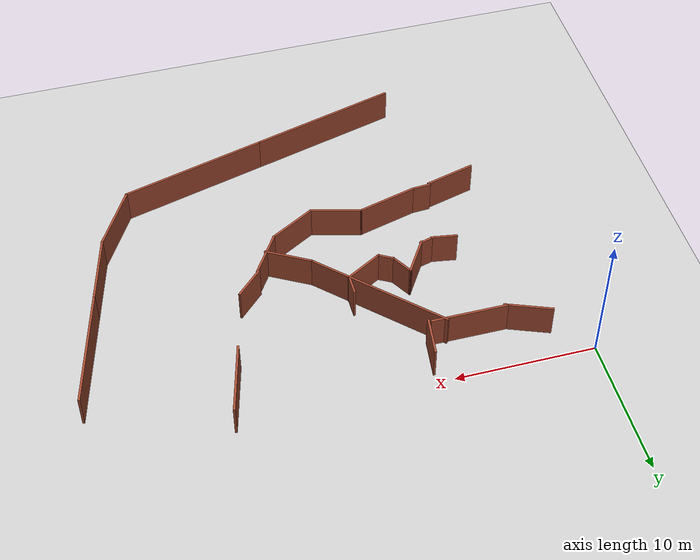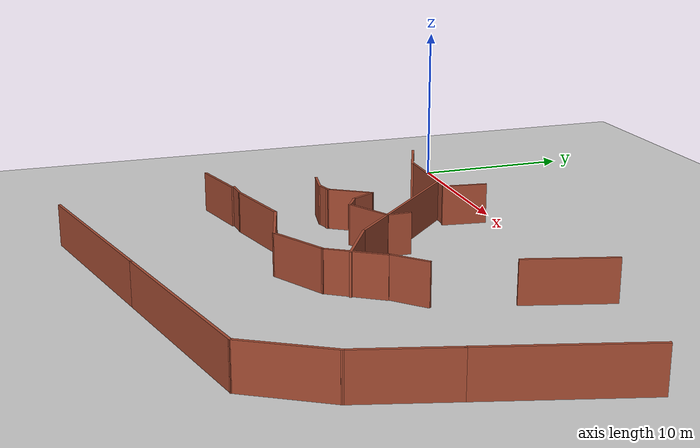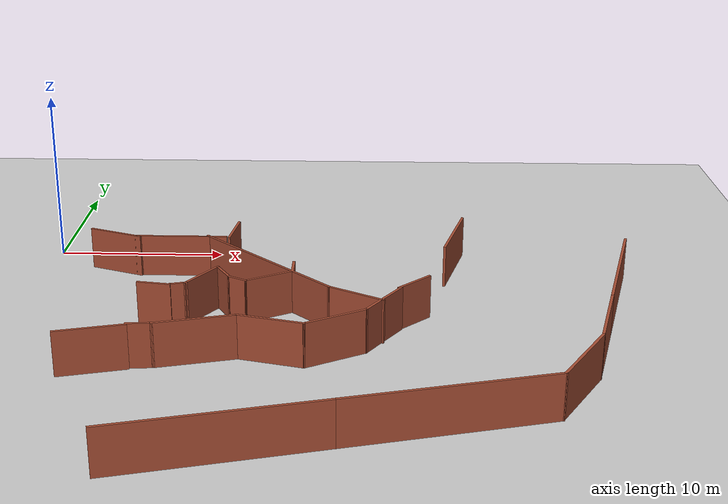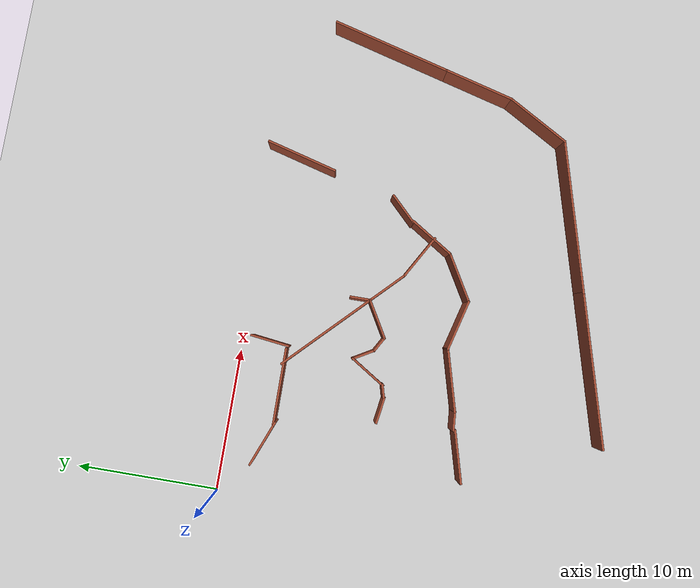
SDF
<sdf version="1.5">
 <world name="default">
  <model name="ground_plane">
   <static>1</static>
   <link name="link">
    <collision name="collision">
     <geometry><plane><normal>0 0 1</normal><size>100 100</size></plane></geometry>
     <surface><friction><ode><mu>100</mu><mu2>50</mu2></ode></friction></surface>
    </collision>
    <visual name="visual">
     <cast_shadows>0</cast_shadows>
     <geometry><plane><normal>0 0 1</normal><size>100 100</size></plane></geometry>
     <material>
      <script><uri>file://media/materials/scripts/gazebo.material</uri><name>Gazebo/Grey</name></script>
     </material>
    </visual>
   </link>
  </model>
  <model name="Untitled1111">
   <link name="Wall_125">
    <pose>2.93183 -16.8951 0 0 -0 0.261799</pose>
    <visual name="Wall_125_Visual">
     <pose>0 0 1.25 0 -0 0</pose>
     <geometry><box><size>3.75 0.15 2.5</size></box></geometry>
     <material>
      <script><uri>file://media/materials/scripts/gazebo.material</uri><name>Gazebo/Bricks</name></script>
      <ambient>1 1 1 1</ambient>
      <shader type="pixel"/>
     </material>
     <meta><layer>0</layer></meta>
    </visual>
    <collision name="Wall_125_Collision">
     <pose>0 0 1.25 0 -0 0</pose>
     <geometry><box><size>3.75 0.15 2.5</size></box></geometry>
     <surface>
      <friction>
       <ode><mu>1</mu><mu2>1</mu2><fdir1>0 0 0</fdir1><slip1>0</slip1><slip2>0</slip2></ode>
       <torsional>
        <coefficient>1</coefficient>
        <patch_radius>0</patch_radius>
        <surface_radius>0</surface_radius>
        <use_patch_radius>1</use_patch_radius>
        <ode><slip>0</slip></ode>
       </torsional>
      </friction>
      <bounce><restitution_coefficient>0</restitution_coefficient><threshold>1e+06</threshold></bounce>
      <contact>
       <collide_without_contact>0</collide_without_contact>
       <collide_without_contact_bitmask>1</collide_without_contact_bitmask>
       <collide_bitmask>1</collide_bitmask>
       <ode>
        <soft_cfm>0</soft_cfm>
        <soft_erp>0.2</soft_erp>
        <kp>1e+13</kp>
        <kd>1</kd>
        <max_vel>0.01</max_vel>
        <min_depth>0</min_depth>
       </ode>
       <bullet>
        <split_impulse>1</split_impulse>
        <split_impulse_penetration_threshold>-0.01</split_impulse_penetration_threshold>
        <soft_cfm>0</soft_cfm>
        <soft_erp>0.2</soft_erp>
        <kp>1e+13</kp>
        <kd>1</kd>
       </bullet>
      </contact>
     </surface>
    </collision>
   </link>
   <link name="Wall_126">
    <pose>5.30143 -16.2622 0 0 -0 0.070665</pose>
    <visual name="Wall_126_Visual">
     <pose>0 0 1.25 0 -0 0</pose>
     <geometry><box><size>1.41503 0.15 2.5</size></box></geometry>
     <material>
      <script><uri>file://media/materials/scripts/gazebo.material</uri><name>Gazebo/Bricks</name></script>
      <ambient>1 1 1 1</ambient>
      <shader type="pixel"/>
     </material>
     <meta><layer>0</layer></meta>
    </visual>
    <collision name="Wall_126_Collision">
     <pose>0 0 1.25 0 -0 0</pose>
     <geometry><box><size>1.41503 0.15 2.5</size></box></geometry>
     <surface>
      <friction>
       <ode><mu>1</mu><mu2>1</mu2><fdir1>0 0 0</fdir1><slip1>0</slip1><slip2>0</slip2></ode>
       <torsional>
        <coefficient>1</coefficient>
        <patch_radius>0</patch_radius>
        <surface_radius>0</surface_radius>
        <use_patch_radius>1</use_patch_radius>
        <ode><slip>0</slip></ode>
       </torsional>
      </friction>
      <bounce><restitution_coefficient>0</restitution_coefficient><threshold>1e+06</threshold></bounce>
      <contact>
       <collide_without_contact>0</collide_without_contact>
       <collide_without_contact_bitmask>1</collide_without_contact_bitmask>
       <collide_bitmask>1</collide_bitmask>
       <ode>
        <soft_cfm>0</soft_cfm>
        <soft_erp>0.2</soft_erp>
        <kp>1e+13</kp>
        <kd>1</kd>
        <max_vel>0.01</max_vel>
        <min_depth>0</min_depth>
       </ode>
       <bullet>
        <split_impulse>1</split_impulse>
        <split_impulse_penetration_threshold>-0.01</split_impulse_penetration_threshold>
        <soft_cfm>0</soft_cfm>
        <soft_erp>0.2</soft_erp>
        <kp>1e+13</kp>
        <kd>1</kd>
       </bullet>
      </contact>
     </surface>
    </collision>
   </link>
   <link name="Wall_127">
    <pose>8.03326 -15.6546 0 0 -0 0.261799</pose>
    <visual name="Wall_127_Visual">
     <pose>0 0 1.25 0 -0 0</pose>
     <geometry><box><size>4.5 0.15 2.5</size></box></geometry>
     <material>
      <script><uri>file://media/materials/scripts/gazebo.material</uri><name>Gazebo/Bricks</name></script>
      <ambient>1 1 1 1</ambient>
      <shader type="pixel"/>
     </material>
     <meta><layer>0</layer></meta>
    </visual>
    <collision name="Wall_127_Collision">
     <pose>0 0 1.25 0 -0 0</pose>
     <geometry><box><size>4.5 0.15 2.5</size></box></geometry>
     <surface>
      <friction>
       <ode><mu>1</mu><mu2>1</mu2><fdir1>0 0 0</fdir1><slip1>0</slip1><slip2>0</slip2></ode>
       <torsional>
        <coefficient>1</coefficient>
        <patch_radius>0</patch_radius>
        <surface_radius>0</surface_radius>
        <use_patch_radius>1</use_patch_radius>
        <ode><slip>0</slip></ode>
       </torsional>
      </friction>
      <bounce><restitution_coefficient>0</restitution_coefficient><threshold>1e+06</threshold></bounce>
      <contact>
       <collide_without_contact>0</collide_without_contact>
       <collide_without_contact_bitmask>1</collide_without_contact_bitmask>
       <collide_bitmask>1</collide_bitmask>
       <ode>
        <soft_cfm>0</soft_cfm>
        <soft_erp>0.2</soft_erp>
        <kp>1e+13</kp>
        <kd>1</kd>
        <max_vel>0.01</max_vel>
        <min_depth>0</min_depth>
       </ode>
       <bullet>
        <split_impulse>1</split_impulse>
        <split_impulse_penetration_threshold>-0.01</split_impulse_penetration_threshold>
        <soft_cfm>0</soft_cfm>
        <soft_erp>0.2</soft_erp>
        <kp>1e+13</kp>
        <kd>1</kd>
       </bullet>
      </contact>
     </surface>
    </collision>
   </link>
   <link name="Wall_128">
    <pose>11.8728 -15.5576 0 0 0 -0.261799</pose>
    <visual name="Wall_128_Visual">
     <pose>0 0 1.25 0 -0 0</pose>
     <geometry><box><size>3.75 0.15 2.5</size></box></geometry>
     <material>
      <script><uri>file://media/materials/scripts/gazebo.material</uri><name>Gazebo/Bricks</name></script>
      <ambient>1 1 1 1</ambient>
      <shader type="pixel"/>
     </material>
     <meta><layer>0</layer></meta>
    </visual>
    <collision name="Wall_128_Collision">
     <pose>0 0 1.25 0 -0 0</pose>
     <geometry><box><size>3.75 0.15 2.5</size></box></geometry>
     <surface>
      <friction>
       <ode><mu>1</mu><mu2>1</mu2><fdir1>0 0 0</fdir1><slip1>0</slip1><slip2>0</slip2></ode>
       <torsional>
        <coefficient>1</coefficient>
        <patch_radius>0</patch_radius>
        <surface_radius>0</surface_radius>
        <use_patch_radius>1</use_patch_radius>
        <ode><slip>0</slip></ode>
       </torsional>
      </friction>
      <bounce><restitution_coefficient>0</restitution_coefficient><threshold>1e+06</threshold></bounce>
      <contact>
       <collide_without_contact>0</collide_without_contact>
       <collide_without_contact_bitmask>1</collide_without_contact_bitmask>
       <collide_bitmask>1</collide_bitmask>
       <ode>
        <soft_cfm>0</soft_cfm>
        <soft_erp>0.2</soft_erp>
        <kp>1e+13</kp>
        <kd>1</kd>
        <max_vel>0.01</max_vel>
        <min_depth>0</min_depth>
       </ode>
       <bullet>
        <split_impulse>1</split_impulse>
        <split_impulse_penetration_threshold>-0.01</split_impulse_penetration_threshold>
        <soft_cfm>0</soft_cfm>
        <soft_erp>0.2</soft_erp>
        <kp>1e+13</kp>
        <kd>1</kd>
       </bullet>
      </contact>
     </surface>
    </collision>
   </link>
   <link name="Wall_129">
    <pose>15.1703 -15.1234 0 0 -0 0.523599</pose>
    <visual name="Wall_129_Visual">
     <pose>0 0 1.25 0 -0 0</pose>
     <geometry><box><size>3.75 0.15 2.5</size></box></geometry>
     <material>
      <script><uri>file://media/materials/scripts/gazebo.material</uri><name>Gazebo/Bricks</name></script>
      <ambient>1 1 1 1</ambient>
      <shader type="pixel"/>
     </material>
     <meta><layer>0</layer></meta>
    </visual>
    <collision name="Wall_129_Collision">
     <pose>0 0 1.25 0 -0 0</pose>
     <geometry><box><size>3.75 0.15 2.5</size></box></geometry>
     <surface>
      <friction>
       <ode><mu>1</mu><mu2>1</mu2><fdir1>0 0 0</fdir1><slip1>0</slip1><slip2>0</slip2></ode>
       <torsional>
        <coefficient>1</coefficient>
        <patch_radius>0</patch_radius>
        <surface_radius>0</surface_radius>
        <use_patch_radius>1</use_patch_radius>
        <ode><slip>0</slip></ode>
       </torsional>
      </friction>
      <bounce><restitution_coefficient>0</restitution_coefficient><threshold>1e+06</threshold></bounce>
      <contact>
       <collide_without_contact>0</collide_without_contact>
       <collide_without_contact_bitmask>1</collide_without_contact_bitmask>
       <collide_bitmask>1</collide_bitmask>
       <ode>
        <soft_cfm>0</soft_cfm>
        <soft_erp>0.2</soft_erp>
        <kp>1e+13</kp>
        <kd>1</kd>
        <max_vel>0.01</max_vel>
        <min_depth>0</min_depth>
       </ode>
       <bullet>
        <split_impulse>1</split_impulse>
        <split_impulse_penetration_threshold>-0.01</split_impulse_penetration_threshold>
        <soft_cfm>0</soft_cfm>
        <soft_erp>0.2</soft_erp>
        <kp>1e+13</kp>
        <kd>1</kd>
       </bullet>
      </contact>
     </surface>
    </collision>
   </link>
   <link name="Wall_130">
    <pose>17.6592 -12.7729 0 0 -0 1.00068</pose>
    <visual name="Wall_130_Visual">
     <pose>0 0 1.25 0 -0 0</pose>
     <geometry><box><size>3.59625 0.15 2.5</size></box></geometry>
     <material>
      <script><uri>file://media/materials/scripts/gazebo.material</uri><name>Gazebo/Bricks</name></script>
      <ambient>1 1 1 1</ambient>
      <shader type="pixel"/>
     </material>
     <meta><layer>0</layer></meta>
    </visual>
    <collision name="Wall_130_Collision">
     <pose>0 0 1.25 0 -0 0</pose>
     <geometry><box><size>3.59625 0.15 2.5</size></box></geometry>
     <surface>
      <friction>
       <ode><mu>1</mu><mu2>1</mu2><fdir1>0 0 0</fdir1><slip1>0</slip1><slip2>0</slip2></ode>
       <torsional>
        <coefficient>1</coefficient>
        <patch_radius>0</patch_radius>
        <surface_radius>0</surface_radius>
        <use_patch_radius>1</use_patch_radius>
        <ode><slip>0</slip></ode>
       </torsional>
      </friction>
      <bounce><restitution_coefficient>0</restitution_coefficient><threshold>1e+06</threshold></bounce>
      <contact>
       <collide_without_contact>0</collide_without_contact>
       <collide_without_contact_bitmask>1</collide_without_contact_bitmask>
       <collide_bitmask>1</collide_bitmask>
       <ode>
        <soft_cfm>0</soft_cfm>
        <soft_erp>0.2</soft_erp>
        <kp>1e+13</kp>
        <kd>1</kd>
        <max_vel>0.01</max_vel>
        <min_depth>0</min_depth>
       </ode>
       <bullet>
        <split_impulse>1</split_impulse>
        <split_impulse_penetration_threshold>-0.01</split_impulse_penetration_threshold>
        <soft_cfm>0</soft_cfm>
        <soft_erp>0.2</soft_erp>
        <kp>1e+13</kp>
        <kd>1</kd>
       </bullet>
      </contact>
     </surface>
    </collision>
   </link>
   <link name="Wall_131">
    <pose>19.3275 -10.4914 0 0 -0 0.785398</pose>
    <visual name="Wall_131_Visual">
     <pose>0 0 1.25 0 -0 0</pose>
     <geometry><box><size>2.5 0.15 2.5</size></box></geometry>
     <material>
      <script><uri>file://media/materials/scripts/gazebo.material</uri><name>Gazebo/Bricks</name></script>
      <ambient>1 1 1 1</ambient>
      <shader type="pixel"/>
     </material>
     <meta><layer>0</layer></meta>
    </visual>
    <collision name="Wall_131_Collision">
     <pose>0 0 1.25 0 -0 0</pose>
     <geometry><box><size>2.5 0.15 2.5</size></box></geometry>
     <surface>
      <friction>
       <ode><mu>1</mu><mu2>1</mu2><fdir1>0 0 0</fdir1><slip1>0</slip1><slip2>0</slip2></ode>
       <torsional>
        <coefficient>1</coefficient>
        <patch_radius>0</patch_radius>
        <surface_radius>0</surface_radius>
        <use_patch_radius>1</use_patch_radius>
        <ode><slip>0</slip></ode>
       </torsional>
      </friction>
      <bounce><restitution_coefficient>0</restitution_coefficient><threshold>1e+06</threshold></bounce>
      <contact>
       <collide_without_contact>0</collide_without_contact>
       <collide_without_contact_bitmask>1</collide_without_contact_bitmask>
       <collide_bitmask>1</collide_bitmask>
       <ode>
        <soft_cfm>0</soft_cfm>
        <soft_erp>0.2</soft_erp>
        <kp>1e+13</kp>
        <kd>1</kd>
        <max_vel>0.01</max_vel>
        <min_depth>0</min_depth>
       </ode>
       <bullet>
        <split_impulse>1</split_impulse>
        <split_impulse_penetration_threshold>-0.01</split_impulse_penetration_threshold>
        <soft_cfm>0</soft_cfm>
        <soft_erp>0.2</soft_erp>
        <kp>1e+13</kp>
        <kd>1</kd>
       </bullet>
      </contact>
     </surface>
    </collision>
   </link>
   <link name="Wall_133">
    <pose>21.9164 -2.75419 0 0 -0 1.309</pose>
    <visual name="Wall_133_Visual">
     <pose>0 0 1.25 0 -0 0</pose>
     <geometry><box><size>5.25 0.15 2.5</size></box></geometry>
     <material>
      <script><uri>file://media/materials/scripts/gazebo.material</uri><name>Gazebo/Bricks</name></script>
      <ambient>1 1 1 1</ambient>
      <shader type="pixel"/>
     </material>
     <meta><layer>0</layer></meta>
    </visual>
    <collision name="Wall_133_Collision">
     <pose>0 0 1.25 0 -0 0</pose>
     <geometry><box><size>5.25 0.15 2.5</size></box></geometry>
     <surface>
      <friction>
       <ode><mu>1</mu><mu2>1</mu2><fdir1>0 0 0</fdir1><slip1>0</slip1><slip2>0</slip2></ode>
       <torsional>
        <coefficient>1</coefficient>
        <patch_radius>0</patch_radius>
        <surface_radius>0</surface_radius>
        <use_patch_radius>1</use_patch_radius>
        <ode><slip>0</slip></ode>
       </torsional>
      </friction>
      <bounce><restitution_coefficient>0</restitution_coefficient><threshold>1e+06</threshold></bounce>
      <contact>
       <collide_without_contact>0</collide_without_contact>
       <collide_without_contact_bitmask>1</collide_without_contact_bitmask>
       <collide_bitmask>1</collide_bitmask>
       <ode>
        <soft_cfm>0</soft_cfm>
        <soft_erp>0.2</soft_erp>
        <kp>1e+13</kp>
        <kd>1</kd>
        <max_vel>0.01</max_vel>
        <min_depth>0</min_depth>
       </ode>
       <bullet>
        <split_impulse>1</split_impulse>
        <split_impulse_penetration_threshold>-0.01</split_impulse_penetration_threshold>
        <soft_cfm>0</soft_cfm>
        <soft_erp>0.2</soft_erp>
        <kp>1e+13</kp>
        <kd>1</kd>
       </bullet>
      </contact>
     </surface>
    </collision>
   </link>
   <link name="Wall_143">
    <pose>10.9695 -7.57991 0 0 0 -0.785398</pose>
    <visual name="Wall_143_Visual">
     <pose>0 0 1.25 0 -0 0</pose>
     <geometry><box><size>10.75 0.15 2.5</size></box></geometry>
     <material>
      <script><uri>file://media/materials/scripts/gazebo.material</uri><name>Gazebo/Bricks</name></script>
      <ambient>1 1 1 1</ambient>
      <shader type="pixel"/>
     </material>
     <meta><layer>0</layer></meta>
    </visual>
    <collision name="Wall_143_Collision">
     <pose>0 0 1.25 0 -0 0</pose>
     <geometry><box><size>10.75 0.15 2.5</size></box></geometry>
     <surface>
      <friction>
       <ode><mu>1</mu><mu2>1</mu2><fdir1>0 0 0</fdir1><slip1>0</slip1><slip2>0</slip2></ode>
       <torsional>
        <coefficient>1</coefficient>
        <patch_radius>0</patch_radius>
        <surface_radius>0</surface_radius>
        <use_patch_radius>1</use_patch_radius>
        <ode><slip>0</slip></ode>
       </torsional>
      </friction>
      <bounce><restitution_coefficient>0</restitution_coefficient><threshold>1e+06</threshold></bounce>
      <contact>
       <collide_without_contact>0</collide_without_contact>
       <collide_without_contact_bitmask>1</collide_without_contact_bitmask>
       <collide_bitmask>1</collide_bitmask>
       <ode>
        <soft_cfm>0</soft_cfm>
        <soft_erp>0.2</soft_erp>
        <kp>1e+13</kp>
        <kd>1</kd>
        <max_vel>0.01</max_vel>
        <min_depth>0</min_depth>
       </ode>
       <bullet>
        <split_impulse>1</split_impulse>
        <split_impulse_penetration_threshold>-0.01</split_impulse_penetration_threshold>
        <soft_cfm>0</soft_cfm>
        <soft_erp>0.2</soft_erp>
        <kp>1e+13</kp>
        <kd>1</kd>
       </bullet>
      </contact>
     </surface>
    </collision>
   </link>
   <link name="Wall_170">
    <pose>30.8852 -7.7736 0 0 0 -1.8326</pose>
    <visual name="Wall_170_Visual">
     <pose>0 0 1.25 0 -0 0</pose>
     <geometry><box><size>8.75 0.15 2.5</size></box></geometry>
     <material>
      <script><uri>file://media/materials/scripts/gazebo.material</uri><name>Gazebo/Bricks</name></script>
      <ambient>1 1 1 1</ambient>
      <shader type="pixel"/>
     </material>
     <meta><layer>0</layer></meta>
    </visual>
    <collision name="Wall_170_Collision">
     <pose>0 0 1.25 0 -0 0</pose>
     <geometry><box><size>8.75 0.15 2.5</size></box></geometry>
     <surface>
      <friction>
       <ode><mu>1</mu><mu2>1</mu2><fdir1>0 0 0</fdir1><slip1>0</slip1><slip2>0</slip2></ode>
       <torsional>
        <coefficient>1</coefficient>
        <patch_radius>0</patch_radius>
        <surface_radius>0</surface_radius>
        <use_patch_radius>1</use_patch_radius>
        <ode><slip>0</slip></ode>
       </torsional>
      </friction>
      <bounce><restitution_coefficient>0</restitution_coefficient><threshold>1e+06</threshold></bounce>
      <contact>
       <collide_without_contact>0</collide_without_contact>
       <collide_without_contact_bitmask>1</collide_without_contact_bitmask>
       <collide_bitmask>1</collide_bitmask>
       <ode>
        <soft_cfm>0</soft_cfm>
        <soft_erp>0.2</soft_erp>
        <kp>1e+13</kp>
        <kd>1</kd>
        <max_vel>0.01</max_vel>
        <min_depth>0</min_depth>
       </ode>
       <bullet>
        <split_impulse>1</split_impulse>
        <split_impulse_penetration_threshold>-0.01</split_impulse_penetration_threshold>
        <soft_cfm>0</soft_cfm>
        <soft_erp>0.2</soft_erp>
        <kp>1e+13</kp>
        <kd>1</kd>
       </bullet>
      </contact>
     </surface>
    </collision>
   </link>
   <link name="Wall_171">
    <pose>29.1123 -14.3902 0 0 0 -1.8326</pose>
    <visual name="Wall_171_Visual">
     <pose>0 0 1.25 0 -0 0</pose>
     <geometry><box><size>5.25 0.15 2.5</size></box></geometry>
     <material>
      <script><uri>file://media/materials/scripts/gazebo.material</uri><name>Gazebo/Bricks</name></script>
      <ambient>1 1 1 1</ambient>
      <shader type="pixel"/>
     </material>
     <meta><layer>0</layer></meta>
    </visual>
    <collision name="Wall_171_Collision">
     <pose>0 0 1.25 0 -0 0</pose>
     <geometry><box><size>5.25 0.15 2.5</size></box></geometry>
     <surface>
      <friction>
       <ode><mu>1</mu><mu2>1</mu2><fdir1>0 0 0</fdir1><slip1>0</slip1><slip2>0</slip2></ode>
       <torsional>
        <coefficient>1</coefficient>
        <patch_radius>0</patch_radius>
        <surface_radius>0</surface_radius>
        <use_patch_radius>1</use_patch_radius>
        <ode><slip>0</slip></ode>
       </torsional>
      </friction>
      <bounce><restitution_coefficient>0</restitution_coefficient><threshold>1e+06</threshold></bounce>
      <contact>
       <collide_without_contact>0</collide_without_contact>
       <collide_without_contact_bitmask>1</collide_without_contact_bitmask>
       <collide_bitmask>1</collide_bitmask>
       <ode>
        <soft_cfm>0</soft_cfm>
        <soft_erp>0.2</soft_erp>
        <kp>1e+13</kp>
        <kd>1</kd>
        <max_vel>0.01</max_vel>
        <min_depth>0</min_depth>
       </ode>
       <bullet>
        <split_impulse>1</split_impulse>
        <split_impulse_penetration_threshold>-0.01</split_impulse_penetration_threshold>
        <soft_cfm>0</soft_cfm>
        <soft_erp>0.2</soft_erp>
        <kp>1e+13</kp>
        <kd>1</kd>
       </bullet>
      </contact>
     </surface>
    </collision>
   </link>
   <link name="Wall_172">
    <pose>27.2398 -18.9534 0 0 0 -2.0944</pose>
    <visual name="Wall_172_Visual">
     <pose>0 0 1.25 0 -0 0</pose>
     <geometry><box><size>5 0.15 2.5</size></box></geometry>
     <material>
      <script><uri>file://media/materials/scripts/gazebo.material</uri><name>Gazebo/Bricks</name></script>
      <ambient>1 1 1 1</ambient>
      <shader type="pixel"/>
     </material>
     <meta><layer>0</layer></meta>
    </visual>
    <collision name="Wall_172_Collision">
     <pose>0 0 1.25 0 -0 0</pose>
     <geometry><box><size>5 0.15 2.5</size></box></geometry>
     <surface>
      <friction>
       <ode><mu>1</mu><mu2>1</mu2><fdir1>0 0 0</fdir1><slip1>0</slip1><slip2>0</slip2></ode>
       <torsional>
        <coefficient>1</coefficient>
        <patch_radius>0</patch_radius>
        <surface_radius>0</surface_radius>
        <use_patch_radius>1</use_patch_radius>
        <ode><slip>0</slip></ode>
       </torsional>
      </friction>
      <bounce><restitution_coefficient>0</restitution_coefficient><threshold>1e+06</threshold></bounce>
      <contact>
       <collide_without_contact>0</collide_without_contact>
       <collide_without_contact_bitmask>1</collide_without_contact_bitmask>
       <collide_bitmask>1</collide_bitmask>
       <ode>
        <soft_cfm>0</soft_cfm>
        <soft_erp>0.2</soft_erp>
        <kp>1e+13</kp>
        <kd>1</kd>
        <max_vel>0.01</max_vel>
        <min_depth>0</min_depth>
       </ode>
       <bullet>
        <split_impulse>1</split_impulse>
        <split_impulse_penetration_threshold>-0.01</split_impulse_penetration_threshold>
        <soft_cfm>0</soft_cfm>
        <soft_erp>0.2</soft_erp>
        <kp>1e+13</kp>
        <kd>1</kd>
       </bullet>
      </contact>
     </surface>
    </collision>
   </link>
   <link name="Wall_173">
    <pose>20.7872 -22.4576 0 0 0 -2.87979</pose>
    <visual name="Wall_173_Visual">
     <pose>0 0 1.25 0 -0 0</pose>
     <geometry><box><size>11 0.15 2.5</size></box></geometry>
     <material>
      <script><uri>file://media/materials/scripts/gazebo.material</uri><name>Gazebo/Bricks</name></script>
      <ambient>1 1 1 1</ambient>
      <shader type="pixel"/>
     </material>
     <meta><layer>0</layer></meta>
    </visual>
    <collision name="Wall_173_Collision">
     <pose>0 0 1.25 0 -0 0</pose>
     <geometry><box><size>11 0.15 2.5</size></box></geometry>
     <surface>
      <friction>
       <ode><mu>1</mu><mu2>1</mu2><fdir1>0 0 0</fdir1><slip1>0</slip1><slip2>0</slip2></ode>
       <torsional>
        <coefficient>1</coefficient>
        <patch_radius>0</patch_radius>
        <surface_radius>0</surface_radius>
        <use_patch_radius>1</use_patch_radius>
        <ode><slip>0</slip></ode>
       </torsional>
      </friction>
      <bounce><restitution_coefficient>0</restitution_coefficient><threshold>1e+06</threshold></bounce>
      <contact>
       <collide_without_contact>0</collide_without_contact>
       <collide_without_contact_bitmask>1</collide_without_contact_bitmask>
       <collide_bitmask>1</collide_bitmask>
       <ode>
        <soft_cfm>0</soft_cfm>
        <soft_erp>0.2</soft_erp>
        <kp>1e+13</kp>
        <kd>1</kd>
        <max_vel>0.01</max_vel>
        <min_depth>0</min_depth>
       </ode>
       <bullet>
        <split_impulse>1</split_impulse>
        <split_impulse_penetration_threshold>-0.01</split_impulse_penetration_threshold>
        <soft_cfm>0</soft_cfm>
        <soft_erp>0.2</soft_erp>
        <kp>1e+13</kp>
        <kd>1</kd>
       </bullet>
      </contact>
     </surface>
    </collision>
   </link>
   <link name="Wall_174">
    <pose>10.3069 -25.2658 0 0 0 -2.87979</pose>
    <visual name="Wall_174_Visual">
     <pose>0 0 1.25 0 -0 0</pose>
     <geometry><box><size>11 0.15 2.5</size></box></geometry>
     <material>
      <script><uri>file://media/materials/scripts/gazebo.material</uri><name>Gazebo/Bricks</name></script>
      <ambient>1 1 1 1</ambient>
      <shader type="pixel"/>
     </material>
     <meta><layer>0</layer></meta>
    </visual>
    <collision name="Wall_174_Collision">
     <pose>0 0 1.25 0 -0 0</pose>
     <geometry><box><size>11 0.15 2.5</size></box></geometry>
     <surface>
      <friction>
       <ode><mu>1</mu><mu2>1</mu2><fdir1>0 0 0</fdir1><slip1>0</slip1><slip2>0</slip2></ode>
       <torsional>
        <coefficient>1</coefficient>
        <patch_radius>0</patch_radius>
        <surface_radius>0</surface_radius>
        <use_patch_radius>1</use_patch_radius>
        <ode><slip>0</slip></ode>
       </torsional>
      </friction>
      <bounce><restitution_coefficient>0</restitution_coefficient><threshold>1e+06</threshold></bounce>
      <contact>
       <collide_without_contact>0</collide_without_contact>
       <collide_without_contact_bitmask>1</collide_without_contact_bitmask>
       <collide_bitmask>1</collide_bitmask>
       <ode>
        <soft_cfm>0</soft_cfm>
        <soft_erp>0.2</soft_erp>
        <kp>1e+13</kp>
        <kd>1</kd>
        <max_vel>0.01</max_vel>
        <min_depth>0</min_depth>
       </ode>
       <bullet>
        <split_impulse>1</split_impulse>
        <split_impulse_penetration_threshold>-0.01</split_impulse_penetration_threshold>
        <soft_cfm>0</soft_cfm>
        <soft_erp>0.2</soft_erp>
        <kp>1e+13</kp>
        <kd>1</kd>
       </bullet>
      </contact>
     </surface>
    </collision>
   </link>
   <link name="Wall_180">
    <pose>16.1678 -12.1651 0 0 0 -0.523599</pose>
    <visual name="Wall_180_Visual">
     <pose>0 0 1.25 0 -0 0</pose>
     <geometry><box><size>3.5 0.15 2.5</size></box></geometry>
     <material>
      <script><uri>file://media/materials/scripts/gazebo.material</uri><name>Gazebo/Bricks</name></script>
      <ambient>1 1 1 1</ambient>
      <shader type="pixel"/>
     </material>
     <meta><layer>0</layer></meta>
    </visual>
    <collision name="Wall_180_Collision">
     <pose>0 0 1.25 0 -0 0</pose>
     <geometry><box><size>3.5 0.15 2.5</size></box></geometry>
     <surface>
      <friction>
       <ode><mu>1</mu><mu2>1</mu2><fdir1>0 0 0</fdir1><slip1>0</slip1><slip2>0</slip2></ode>
       <torsional>
        <coefficient>1</coefficient>
        <patch_radius>0</patch_radius>
        <surface_radius>0</surface_radius>
        <use_patch_radius>1</use_patch_radius>
        <ode><slip>0</slip></ode>
       </torsional>
      </friction>
      <bounce><restitution_coefficient>0</restitution_coefficient><threshold>1e+06</threshold></bounce>
      <contact>
       <collide_without_contact>0</collide_without_contact>
       <collide_without_contact_bitmask>1</collide_without_contact_bitmask>
       <collide_bitmask>1</collide_bitmask>
       <ode>
        <soft_cfm>0</soft_cfm>
        <soft_erp>0.2</soft_erp>
        <kp>1e+13</kp>
        <kd>1</kd>
        <max_vel>0.01</max_vel>
        <min_depth>0</min_depth>
       </ode>
       <bullet>
        <split_impulse>1</split_impulse>
        <split_impulse_penetration_threshold>-0.01</split_impulse_penetration_threshold>
        <soft_cfm>0</soft_cfm>
        <soft_erp>0.2</soft_erp>
        <kp>1e+13</kp>
        <kd>1</kd>
       </bullet>
      </contact>
     </surface>
    </collision>
   </link>
   <link name="Wall_63">
    <pose>8.66154 -2.76517 0 0 0 -1.69399</pose>
    <visual name="Wall_63_Visual">
     <pose>0 0 1.25 0 -0 0</pose>
     <geometry><box><size>2.79748 0.15 2.5</size></box></geometry>
     <material>
      <script><uri>file://media/materials/scripts/gazebo.material</uri><name>Gazebo/Bricks</name></script>
      <ambient>1 1 1 1</ambient>
      <shader type="pixel"/>
     </material>
     <meta><layer>0</layer></meta>
    </visual>
    <collision name="Wall_63_Collision">
     <pose>0 0 1.25 0 -0 0</pose>
     <geometry><box><size>2.79748 0.15 2.5</size></box></geometry>
     <surface>
      <friction>
       <ode><mu>1</mu><mu2>1</mu2><fdir1>0 0 0</fdir1><slip1>0</slip1><slip2>0</slip2></ode>
       <torsional>
        <coefficient>1</coefficient>
        <patch_radius>0</patch_radius>
        <surface_radius>0</surface_radius>
        <use_patch_radius>1</use_patch_radius>
        <ode><slip>0</slip></ode>
       </torsional>
      </friction>
      <bounce><restitution_coefficient>0</restitution_coefficient><threshold>1e+06</threshold></bounce>
      <contact>
       <collide_without_contact>0</collide_without_contact>
       <collide_without_contact_bitmask>1</collide_without_contact_bitmask>
       <collide_bitmask>1</collide_bitmask>
       <ode>
        <soft_cfm>0</soft_cfm>
        <soft_erp>0.2</soft_erp>
        <kp>1e+13</kp>
        <kd>1</kd>
        <max_vel>0.01</max_vel>
        <min_depth>0</min_depth>
       </ode>
       <bullet>
        <split_impulse>1</split_impulse>
        <split_impulse_penetration_threshold>-0.01</split_impulse_penetration_threshold>
        <soft_cfm>0</soft_cfm>
        <soft_erp>0.2</soft_erp>
        <kp>1e+13</kp>
        <kd>1</kd>
       </bullet>
      </contact>
     </surface>
    </collision>
   </link>
   <link name="Wall_64">
    <pose>5.61107 -3.97248 0 0 -0 3.14159</pose>
    <visual name="Wall_64_Visual">
     <pose>0 0 1.25 0 -0 0</pose>
     <geometry><box><size>5.5 0.15 2.5</size></box></geometry>
     <material>
      <script><uri>file://media/materials/scripts/gazebo.material</uri><name>Gazebo/Bricks</name></script>
      <ambient>1 1 1 1</ambient>
      <shader type="pixel"/>
     </material>
     <meta><layer>0</layer></meta>
    </visual>
    <collision name="Wall_64_Collision">
     <pose>0 0 1.25 0 -0 0</pose>
     <geometry><box><size>5.5 0.15 2.5</size></box></geometry>
     <surface>
      <friction>
       <ode><mu>1</mu><mu2>1</mu2><fdir1>0 0 0</fdir1><slip1>0</slip1><slip2>0</slip2></ode>
       <torsional>
        <coefficient>1</coefficient>
        <patch_radius>0</patch_radius>
        <surface_radius>0</surface_radius>
        <use_patch_radius>1</use_patch_radius>
        <ode><slip>0</slip></ode>
       </torsional>
      </friction>
      <bounce><restitution_coefficient>0</restitution_coefficient><threshold>1e+06</threshold></bounce>
      <contact>
       <collide_without_contact>0</collide_without_contact>
       <collide_without_contact_bitmask>1</collide_without_contact_bitmask>
       <collide_bitmask>1</collide_bitmask>
       <ode>
        <soft_cfm>0</soft_cfm>
        <soft_erp>0.2</soft_erp>
        <kp>1e+13</kp>
        <kd>1</kd>
        <max_vel>0.01</max_vel>
        <min_depth>0</min_depth>
       </ode>
       <bullet>
        <split_impulse>1</split_impulse>
        <split_impulse_penetration_threshold>-0.01</split_impulse_penetration_threshold>
        <soft_cfm>0</soft_cfm>
        <soft_erp>0.2</soft_erp>
        <kp>1e+13</kp>
        <kd>1</kd>
       </bullet>
      </contact>
     </surface>
    </collision>
   </link>
   <link name="Wall_65">
    <pose>1.61699 -3.46708 0 0 -0 2.76162</pose>
    <visual name="Wall_65_Visual">
     <pose>0 0 1.25 0 -0 0</pose>
     <geometry><box><size>3.44907 0.15 2.5</size></box></geometry>
     <material>
      <script><uri>file://media/materials/scripts/gazebo.material</uri><name>Gazebo/Bricks</name></script>
      <ambient>1 1 1 1</ambient>
      <shader type="pixel"/>
     </material>
     <meta><layer>0</layer></meta>
    </visual>
    <collision name="Wall_65_Collision">
     <pose>0 0 1.25 0 -0 0</pose>
     <geometry><box><size>3.44907 0.15 2.5</size></box></geometry>
     <surface>
      <friction>
       <ode><mu>1</mu><mu2>1</mu2><fdir1>0 0 0</fdir1><slip1>0</slip1><slip2>0</slip2></ode>
       <torsional>
        <coefficient>1</coefficient>
        <patch_radius>0</patch_radius>
        <surface_radius>0</surface_radius>
        <use_patch_radius>1</use_patch_radius>
        <ode><slip>0</slip></ode>
       </torsional>
      </friction>
      <bounce><restitution_coefficient>0</restitution_coefficient><threshold>1e+06</threshold></bounce>
      <contact>
       <collide_without_contact>0</collide_without_contact>
       <collide_without_contact_bitmask>1</collide_without_contact_bitmask>
       <collide_bitmask>1</collide_bitmask>
       <ode>
        <soft_cfm>0</soft_cfm>
        <soft_erp>0.2</soft_erp>
        <kp>1e+13</kp>
        <kd>1</kd>
        <max_vel>0.01</max_vel>
        <min_depth>0</min_depth>
       </ode>
       <bullet>
        <split_impulse>1</split_impulse>
        <split_impulse_penetration_threshold>-0.01</split_impulse_penetration_threshold>
        <soft_cfm>0</soft_cfm>
        <soft_erp>0.2</soft_erp>
        <kp>1e+13</kp>
        <kd>1</kd>
       </bullet>
      </contact>
     </surface>
    </collision>
   </link>
   <link name="Wall_92">
    <pose>5.18319 -11.1172 0 0 0 -0.158534</pose>
    <visual name="Wall_92_Visual">
     <pose>0 0 1.25 0 -0 0</pose>
     <geometry><box><size>1.92065 0.15 2.5</size></box></geometry>
     <material>
      <script><uri>file://media/materials/scripts/gazebo.material</uri><name>Gazebo/Bricks</name></script>
      <ambient>1 1 1 1</ambient>
      <shader type="pixel"/>
     </material>
     <meta><layer>0</layer></meta>
    </visual>
    <collision name="Wall_92_Collision">
     <pose>0 0 1.25 0 -0 0</pose>
     <geometry><box><size>1.92065 0.15 2.5</size></box></geometry>
     <surface>
      <friction>
       <ode><mu>1</mu><mu2>1</mu2><fdir1>0 0 0</fdir1><slip1>0</slip1><slip2>0</slip2></ode>
       <torsional>
        <coefficient>1</coefficient>
        <patch_radius>0</patch_radius>
        <surface_radius>0</surface_radius>
        <use_patch_radius>1</use_patch_radius>
        <ode><slip>0</slip></ode>
       </torsional>
      </friction>
      <bounce><restitution_coefficient>0</restitution_coefficient><threshold>1e+06</threshold></bounce>
      <contact>
       <collide_without_contact>0</collide_without_contact>
       <collide_without_contact_bitmask>1</collide_without_contact_bitmask>
       <collide_bitmask>1</collide_bitmask>
       <ode>
        <soft_cfm>0</soft_cfm>
        <soft_erp>0.2</soft_erp>
        <kp>1e+13</kp>
        <kd>1</kd>
        <max_vel>0.01</max_vel>
        <min_depth>0</min_depth>
       </ode>
       <bullet>
        <split_impulse>1</split_impulse>
        <split_impulse_penetration_threshold>-0.01</split_impulse_penetration_threshold>
        <soft_cfm>0</soft_cfm>
        <soft_erp>0.2</soft_erp>
        <kp>1e+13</kp>
        <kd>1</kd>
       </bullet>
      </contact>
     </surface>
    </collision>
   </link>
   <link name="Wall_93">
    <pose>6.52113 -11.0937 0 0 -0 0.261799</pose>
    <visual name="Wall_93_Visual">
     <pose>0 0 1.25 0 -0 0</pose>
     <geometry><box><size>1 0.15 2.5</size></box></geometry>
     <material>
      <script><uri>file://media/materials/scripts/gazebo.material</uri><name>Gazebo/Bricks</name></script>
      <ambient>1 1 1 1</ambient>
      <shader type="pixel"/>
     </material>
     <meta><layer>0</layer></meta>
    </visual>
    <collision name="Wall_93_Collision">
     <pose>0 0 1.25 0 -0 0</pose>
     <geometry><box><size>1 0.15 2.5</size></box></geometry>
     <surface>
      <friction>
       <ode><mu>1</mu><mu2>1</mu2><fdir1>0 0 0</fdir1><slip1>0</slip1><slip2>0</slip2></ode>
       <torsional>
        <coefficient>1</coefficient>
        <patch_radius>0</patch_radius>
        <surface_radius>0</surface_radius>
        <use_patch_radius>1</use_patch_radius>
        <ode><slip>0</slip></ode>
       </torsional>
      </friction>
      <bounce><restitution_coefficient>0</restitution_coefficient><threshold>1e+06</threshold></bounce>
      <contact>
       <collide_without_contact>0</collide_without_contact>
       <collide_without_contact_bitmask>1</collide_without_contact_bitmask>
       <collide_bitmask>1</collide_bitmask>
       <ode>
        <soft_cfm>0</soft_cfm>
        <soft_erp>0.2</soft_erp>
        <kp>1e+13</kp>
        <kd>1</kd>
        <max_vel>0.01</max_vel>
        <min_depth>0</min_depth>
       </ode>
       <bullet>
        <split_impulse>1</split_impulse>
        <split_impulse_penetration_threshold>-0.01</split_impulse_penetration_threshold>
        <soft_cfm>0</soft_cfm>
        <soft_erp>0.2</soft_erp>
        <kp>1e+13</kp>
        <kd>1</kd>
       </bullet>
      </contact>
     </surface>
    </collision>
   </link>
   <link name="Wall_94">
    <pose>7.62875 -9.85719 0 0 -0 1.00434</pose>
    <visual name="Wall_94_Visual">
     <pose>0 0 1.25 0 -0 0</pose>
     <geometry><box><size>2.94625 0.15 2.5</size></box></geometry>
     <material>
      <script><uri>file://media/materials/scripts/gazebo.material</uri><name>Gazebo/Bricks</name></script>
      <ambient>1 1 1 1</ambient>
      <shader type="pixel"/>
     </material>
     <meta><layer>0</layer></meta>
    </visual>
    <collision name="Wall_94_Collision">
     <pose>0 0 1.25 0 -0 0</pose>
     <geometry><box><size>2.94625 0.15 2.5</size></box></geometry>
     <surface>
      <friction>
       <ode><mu>1</mu><mu2>1</mu2><fdir1>0 0 0</fdir1><slip1>0</slip1><slip2>0</slip2></ode>
       <torsional>
        <coefficient>1</coefficient>
        <patch_radius>0</patch_radius>
        <surface_radius>0</surface_radius>
        <use_patch_radius>1</use_patch_radius>
        <ode><slip>0</slip></ode>
       </torsional>
      </friction>
      <bounce><restitution_coefficient>0</restitution_coefficient><threshold>1e+06</threshold></bounce>
      <contact>
       <collide_without_contact>0</collide_without_contact>
       <collide_without_contact_bitmask>1</collide_without_contact_bitmask>
       <collide_bitmask>1</collide_bitmask>
       <ode>
        <soft_cfm>0</soft_cfm>
        <soft_erp>0.2</soft_erp>
        <kp>1e+13</kp>
        <kd>1</kd>
        <max_vel>0.01</max_vel>
        <min_depth>0</min_depth>
       </ode>
       <bullet>
        <split_impulse>1</split_impulse>
        <split_impulse_penetration_threshold>-0.01</split_impulse_penetration_threshold>
        <soft_cfm>0</soft_cfm>
        <soft_erp>0.2</soft_erp>
        <kp>1e+13</kp>
        <kd>1</kd>
       </bullet>
      </contact>
     </surface>
    </collision>
   </link>
   <link name="Wall_95">
    <pose>8.77905 -9.37027 0 0 0 -1.0472</pose>
    <visual name="Wall_95_Visual">
     <pose>0 0 1.25 0 -0 0</pose>
     <geometry><box><size>1.75 0.15 2.5</size></box></geometry>
     <material>
      <script><uri>file://media/materials/scripts/gazebo.material</uri><name>Gazebo/Bricks</name></script>
      <ambient>1 1 1 1</ambient>
      <shader type="pixel"/>
     </material>
     <meta><layer>0</layer></meta>
    </visual>
    <collision name="Wall_95_Collision">
     <pose>0 0 1.25 0 -0 0</pose>
     <geometry><box><size>1.75 0.15 2.5</size></box></geometry>
     <surface>
      <friction>
       <ode><mu>1</mu><mu2>1</mu2><fdir1>0 0 0</fdir1><slip1>0</slip1><slip2>0</slip2></ode>
       <torsional>
        <coefficient>1</coefficient>
        <patch_radius>0</patch_radius>
        <surface_radius>0</surface_radius>
        <use_patch_radius>1</use_patch_radius>
        <ode><slip>0</slip></ode>
       </torsional>
      </friction>
      <bounce><restitution_coefficient>0</restitution_coefficient><threshold>1e+06</threshold></bounce>
      <contact>
       <collide_without_contact>0</collide_without_contact>
       <collide_without_contact_bitmask>1</collide_without_contact_bitmask>
       <collide_bitmask>1</collide_bitmask>
       <ode>
        <soft_cfm>0</soft_cfm>
        <soft_erp>0.2</soft_erp>
        <kp>1e+13</kp>
        <kd>1</kd>
        <max_vel>0.01</max_vel>
        <min_depth>0</min_depth>
       </ode>
       <bullet>
        <split_impulse>1</split_impulse>
        <split_impulse_penetration_threshold>-0.01</split_impulse_penetration_threshold>
        <soft_cfm>0</soft_cfm>
        <soft_erp>0.2</soft_erp>
        <kp>1e+13</kp>
        <kd>1</kd>
       </bullet>
      </contact>
     </surface>
    </collision>
   </link>
   <link name="Wall_96">
    <pose>9.65536 -10.3381 0 0 0 -0.523599</pose>
    <visual name="Wall_96_Visual">
     <pose>0 0 1.25 0 -0 0</pose>
     <geometry><box><size>1.25 0.15 2.5</size></box></geometry>
     <material>
      <script><uri>file://media/materials/scripts/gazebo.material</uri><name>Gazebo/Bricks</name></script>
      <ambient>1 1 1 1</ambient>
      <shader type="pixel"/>
     </material>
     <meta><layer>0</layer></meta>
    </visual>
    <collision name="Wall_96_Collision">
     <pose>0 0 1.25 0 -0 0</pose>
     <geometry><box><size>1.25 0.15 2.5</size></box></geometry>
     <surface>
      <friction>
       <ode><mu>1</mu><mu2>1</mu2><fdir1>0 0 0</fdir1><slip1>0</slip1><slip2>0</slip2></ode>
       <torsional>
        <coefficient>1</coefficient>
        <patch_radius>0</patch_radius>
        <surface_radius>0</surface_radius>
        <use_patch_radius>1</use_patch_radius>
        <ode><slip>0</slip></ode>
       </torsional>
      </friction>
      <bounce><restitution_coefficient>0</restitution_coefficient><threshold>1e+06</threshold></bounce>
      <contact>
       <collide_without_contact>0</collide_without_contact>
       <collide_without_contact_bitmask>1</collide_without_contact_bitmask>
       <collide_bitmask>1</collide_bitmask>
       <ode>
        <soft_cfm>0</soft_cfm>
        <soft_erp>0.2</soft_erp>
        <kp>1e+13</kp>
        <kd>1</kd>
        <max_vel>0.01</max_vel>
        <min_depth>0</min_depth>
       </ode>
       <bullet>
        <split_impulse>1</split_impulse>
        <split_impulse_penetration_threshold>-0.01</split_impulse_penetration_threshold>
        <soft_cfm>0</soft_cfm>
        <soft_erp>0.2</soft_erp>
        <kp>1e+13</kp>
        <kd>1</kd>
       </bullet>
      </contact>
     </surface>
    </collision>
   </link>
   <link name="Wall_97">
    <pose>11.3658 -9.90059 0 0 -0 0.523599</pose>
    <visual name="Wall_97_Visual">
     <pose>0 0 1.25 0 -0 0</pose>
     <geometry><box><size>3 0.15 2.5</size></box></geometry>
     <material>
      <script><uri>file://media/materials/scripts/gazebo.material</uri><name>Gazebo/Bricks</name></script>
      <ambient>1 1 1 1</ambient>
      <shader type="pixel"/>
     </material>
     <meta><layer>0</layer></meta>
    </visual>
    <collision name="Wall_97_Collision">
     <pose>0 0 1.25 0 -0 0</pose>
     <geometry><box><size>3 0.15 2.5</size></box></geometry>
     <surface>
      <friction>
       <ode><mu>1</mu><mu2>1</mu2><fdir1>0 0 0</fdir1><slip1>0</slip1><slip2>0</slip2></ode>
       <torsional>
        <coefficient>1</coefficient>
        <patch_radius>0</patch_radius>
        <surface_radius>0</surface_radius>
        <use_patch_radius>1</use_patch_radius>
        <ode><slip>0</slip></ode>
       </torsional>
      </friction>
      <bounce><restitution_coefficient>0</restitution_coefficient><threshold>1e+06</threshold></bounce>
      <contact>
       <collide_without_contact>0</collide_without_contact>
       <collide_without_contact_bitmask>1</collide_without_contact_bitmask>
       <collide_bitmask>1</collide_bitmask>
       <ode>
        <soft_cfm>0</soft_cfm>
        <soft_erp>0.2</soft_erp>
        <kp>1e+13</kp>
        <kd>1</kd>
        <max_vel>0.01</max_vel>
        <min_depth>0</min_depth>
       </ode>
       <bullet>
        <split_impulse>1</split_impulse>
        <split_impulse_penetration_threshold>-0.01</split_impulse_penetration_threshold>
        <soft_cfm>0</soft_cfm>
        <soft_erp>0.2</soft_erp>
        <kp>1e+13</kp>
        <kd>1</kd>
       </bullet>
      </contact>
     </surface>
    </collision>
   </link>
   <link name="Wall_98">
    <pose>12.5999 -8.51309 0 0 -0 1.5708</pose>
    <visual name="Wall_98_Visual">
     <pose>0 0 1.25 0 -0 0</pose>
     <geometry><box><size>1.5 0.15 2.5</size></box></geometry>
     <material>
      <script><uri>file://media/materials/scripts/gazebo.material</uri><name>Gazebo/Bricks</name></script>
      <ambient>1 1 1 1</ambient>
      <shader type="pixel"/>
     </material>
     <meta><layer>0</layer></meta>
    </visual>
    <collision name="Wall_98_Collision">
     <pose>0 0 1.25 0 -0 0</pose>
     <geometry><box><size>1.5 0.15 2.5</size></box></geometry>
     <surface>
      <friction>
       <ode><mu>1</mu><mu2>1</mu2><fdir1>0 0 0</fdir1><slip1>0</slip1><slip2>0</slip2></ode>
       <torsional>
        <coefficient>1</coefficient>
        <patch_radius>0</patch_radius>
        <surface_radius>0</surface_radius>
        <use_patch_radius>1</use_patch_radius>
        <ode><slip>0</slip></ode>
       </torsional>
      </friction>
      <bounce><restitution_coefficient>0</restitution_coefficient><threshold>1e+06</threshold></bounce>
      <contact>
       <collide_without_contact>0</collide_without_contact>
       <collide_without_contact_bitmask>1</collide_without_contact_bitmask>
       <collide_bitmask>1</collide_bitmask>
       <ode>
        <soft_cfm>0</soft_cfm>
        <soft_erp>0.2</soft_erp>
        <kp>1e+13</kp>
        <kd>1</kd>
        <max_vel>0.01</max_vel>
        <min_depth>0</min_depth>
       </ode>
       <bullet>
        <split_impulse>1</split_impulse>
        <split_impulse_penetration_threshold>-0.01</split_impulse_penetration_threshold>
        <soft_cfm>0</soft_cfm>
        <soft_erp>0.2</soft_erp>
        <kp>1e+13</kp>
        <kd>1</kd>
       </bullet>
      </contact>
     </surface>
    </collision>
   </link>
   <static>1</static>
   <pose>2.40305 0.669162 0 0 -0 0</pose>
  </model>
 </world>
</sdf>
